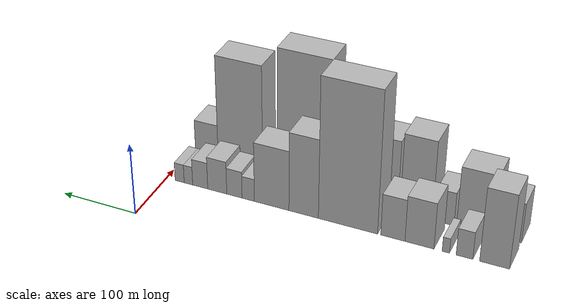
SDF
<sdf version="1.6">
 <world name="default">
  <model name="building_1">
   <static>1</static>
   <pose>100.0000 -426.2330 0 0.000000 0.000000 0.000000</pose>
   <link name="link">
    <pose>0 0 52.50 0 0 0</pose>
    <collision name="collision"><geometry><box><size>40.0000 35.5341 105.0000</size></box></geometry></collision>
    <visual name="visual">
     <cast_shadows>0</cast_shadows>
     <geometry><box><size>40.0000 35.5341 105.0000</size></box></geometry>
     <material>
      <script>
       <uri>model://HANNAS_wall/materials/scripts</uri>
       <uri>model://HANNAS_wall/materials/textures</uri>
       <name>vrc/HANNAS_wall</name>
      </script>
     </material>
    </visual>
   </link>
  </model>
  <model name="building_2">
   <static>1</static>
   <pose>100.0000 -390.4082 0 0.000000 0.000000 0.000000</pose>
   <link name="link">
    <pose>0 0 19.50 0 0 0</pose>
    <collision name="collision"><geometry><box><size>40.0000 20.1155 39.0000</size></box></geometry></collision>
    <visual name="visual">
     <cast_shadows>0</cast_shadows>
     <geometry><box><size>40.0000 20.1155 39.0000</size></box></geometry>
     <material>
      <script>
       <uri>model://HANNAS_wall/materials/scripts</uri>
       <uri>model://HANNAS_wall/materials/textures</uri>
       <name>vrc/HANNAS_wall</name>
      </script>
     </material>
    </visual>
   </link>
  </model>
  <model name="building_3">
   <static>1</static>
   <pose>100.0000 -367.8501 0 0.000000 0.000000 0.000000</pose>
   <link name="link">
    <pose>0 0 10.50 0 0 0</pose>
    <collision name="collision"><geometry><box><size>40.0000 9.0007 21.0000</size></box></geometry></collision>
    <visual name="visual">
     <cast_shadows>0</cast_shadows>
     <geometry><box><size>40.0000 9.0007 21.0000</size></box></geometry>
     <material>
      <script>
       <uri>model://HANNAS_wall/materials/scripts</uri>
       <uri>model://HANNAS_wall/materials/textures</uri>
       <name>vrc/HANNAS_wall</name>
      </script>
     </material>
    </visual>
   </link>
  </model>
  <model name="building_4">
   <static>1</static>
   <pose>100.0000 -335.4870 0 0.000000 0.000000 0.000000</pose>
   <link name="link">
    <pose>0 0 33.00 0 0 0</pose>
    <collision name="collision"><geometry><box><size>40.0000 35.7254 66.0000</size></box></geometry></collision>
    <visual name="visual">
     <cast_shadows>0</cast_shadows>
     <geometry><box><size>40.0000 35.7254 66.0000</size></box></geometry>
     <material>
      <script>
       <uri>model://HANNAS_wall/materials/scripts</uri>
       <uri>model://HANNAS_wall/materials/textures</uri>
       <name>vrc/HANNAS_wall</name>
      </script>
     </material>
    </visual>
   </link>
  </model>
  <model name="building_5">
   <static>1</static>
   <pose>100.0000 -302.4615 0 0.000000 0.000000 0.000000</pose>
   <link name="link">
    <pose>0 0 30.00 0 0 0</pose>
    <collision name="collision"><geometry><box><size>40.0000 30.3257 60.0000</size></box></geometry></collision>
    <visual name="visual">
     <cast_shadows>0</cast_shadows>
     <geometry><box><size>40.0000 30.3257 60.0000</size></box></geometry>
     <material>
      <script>
       <uri>model://HANNAS_wall/materials/scripts</uri>
       <uri>model://HANNAS_wall/materials/textures</uri>
       <name>vrc/HANNAS_wall</name>
      </script>
     </material>
    </visual>
   </link>
  </model>
  <model name="building_6">
   <static>1</static>
   <pose>100.0000 -245.2362 0 0.000000 0.000000 0.000000</pose>
   <link name="link">
    <pose>0 0 100.50 0 0 0</pose>
    <collision name="collision"><geometry><box><size>40.0000 76.1249 201.0000</size></box></geometry></collision>
    <visual name="visual">
     <cast_shadows>0</cast_shadows>
     <geometry><box><size>40.0000 76.1249 201.0000</size></box></geometry>
     <material>
      <script>
       <uri>model://HANNAS_wall/materials/scripts</uri>
       <uri>model://HANNAS_wall/materials/textures</uri>
       <name>vrc/HANNAS_wall</name>
      </script>
     </material>
    </visual>
   </link>
  </model>
  <model name="building_7">
   <static>1</static>
   <pose>100.0000 -187.8042 0 0.000000 0.000000 0.000000</pose>
   <link name="link">
    <pose>0 0 57.00 0 0 0</pose>
    <collision name="collision"><geometry><box><size>40.0000 38.7392 114.0000</size></box></geometry></collision>
    <visual name="visual">
     <cast_shadows>0</cast_shadows>
     <geometry><box><size>40.0000 38.7392 114.0000</size></box></geometry>
     <material>
      <script>
       <uri>model://HANNAS_wall/materials/scripts</uri>
       <uri>model://HANNAS_wall/materials/textures</uri>
       <name>vrc/HANNAS_wall</name>
      </script>
     </material>
    </visual>
   </link>
  </model>
  <model name="building_8">
   <static>1</static>
   <pose>100.0000 -145.2583 0 0.000000 0.000000 0.000000</pose>
   <link name="link">
    <pose>0 0 43.50 0 0 0</pose>
    <collision name="collision"><geometry><box><size>40.0000 46.3527 87.0000</size></box></geometry></collision>
    <visual name="visual">
     <cast_shadows>0</cast_shadows>
     <geometry><box><size>40.0000 46.3527 87.0000</size></box></geometry>
     <material>
      <script>
       <uri>model://HANNAS_wall/materials/scripts</uri>
       <uri>model://HANNAS_wall/materials/textures</uri>
       <name>vrc/HANNAS_wall</name>
      </script>
     </material>
    </visual>
   </link>
  </model>
  <model name="building_9">
   <static>1</static>
   <pose>100.0000 -113.6604 0 0.000000 0.000000 0.000000</pose>
   <link name="link">
    <pose>0 0 16.50 0 0 0</pose>
    <collision name="collision"><geometry><box><size>40.0000 16.8431 33.0000</size></box></geometry></collision>
    <visual name="visual">
     <cast_shadows>0</cast_shadows>
     <geometry><box><size>40.0000 16.8431 33.0000</size></box></geometry>
     <material>
      <script>
       <uri>model://HANNAS_wall/materials/scripts</uri>
       <uri>model://HANNAS_wall/materials/textures</uri>
       <name>vrc/HANNAS_wall</name>
      </script>
     </material>
    </visual>
   </link>
  </model>
  <model name="building_10">
   <static>1</static>
   <pose>100.0000 -94.7720 0 0.000000 0.000000 0.000000</pose>
   <link name="link">
    <pose>0 0 19.50 0 0 0</pose>
    <collision name="collision"><geometry><box><size>40.0000 20.9336 39.0000</size></box></geometry></collision>
    <visual name="visual">
     <cast_shadows>0</cast_shadows>
     <geometry><box><size>40.0000 20.9336 39.0000</size></box></geometry>
     <material>
      <script>
       <uri>model://HANNAS_wall/materials/scripts</uri>
       <uri>model://HANNAS_wall/materials/textures</uri>
       <name>vrc/HANNAS_wall</name>
      </script>
     </material>
    </visual>
   </link>
  </model>
  <model name="building_11">
   <static>1</static>
   <pose>100.0000 -71.0831 0 0.000000 0.000000 0.000000</pose>
   <link name="link">
    <pose>0 0 24.00 0 0 0</pose>
    <collision name="collision"><geometry><box><size>40.0000 26.4442 48.0000</size></box></geometry></collision>
    <visual name="visual">
     <cast_shadows>0</cast_shadows>
     <geometry><box><size>40.0000 26.4442 48.0000</size></box></geometry>
     <material>
      <script>
       <uri>model://HANNAS_wall/materials/scripts</uri>
       <uri>model://HANNAS_wall/materials/textures</uri>
       <name>vrc/HANNAS_wall</name>
      </script>
     </material>
    </visual>
   </link>
  </model>
  <model name="building_12">
   <static>1</static>
   <pose>100.0000 -47.3461 0 0.000000 0.000000 0.000000</pose>
   <link name="link">
    <pose>0 0 19.50 0 0 0</pose>
    <collision name="collision"><geometry><box><size>40.0000 21.0297 39.0000</size></box></geometry></collision>
    <visual name="visual">
     <cast_shadows>0</cast_shadows>
     <geometry><box><size>40.0000 21.0297 39.0000</size></box></geometry>
     <material>
      <script>
       <uri>model://HANNAS_wall/materials/scripts</uri>
       <uri>model://HANNAS_wall/materials/textures</uri>
       <name>vrc/HANNAS_wall</name>
      </script>
     </material>
    </visual>
   </link>
  </model>
  <model name="building_13">
   <static>1</static>
   <pose>100.0000 -30.8680 0 0.000000 0.000000 0.000000</pose>
   <link name="link">
    <pose>0 0 13.50 0 0 0</pose>
    <collision name="collision"><geometry><box><size>40.0000 11.9266 27.0000</size></box></geometry></collision>
    <visual name="visual">
     <cast_shadows>0</cast_shadows>
     <geometry><box><size>40.0000 11.9266 27.0000</size></box></geometry>
     <material>
      <script>
       <uri>model://HANNAS_wall/materials/scripts</uri>
       <uri>model://HANNAS_wall/materials/textures</uri>
       <name>vrc/HANNAS_wall</name>
      </script>
     </material>
    </visual>
   </link>
  </model>
  <model name="building_14">
   <static>1</static>
   <pose>100.0000 -18.4749 0 0.000000 0.000000 0.000000</pose>
   <link name="link">
    <pose>0 0 13.50 0 0 0</pose>
    <collision name="collision"><geometry><box><size>40.0000 12.8596 27.0000</size></box></geometry></collision>
    <visual name="visual">
     <cast_shadows>0</cast_shadows>
     <geometry><box><size>40.0000 12.8596 27.0000</size></box></geometry>
     <material>
      <script>
       <uri>model://HANNAS_wall/materials/scripts</uri>
       <uri>model://HANNAS_wall/materials/textures</uri>
       <name>vrc/HANNAS_wall</name>
      </script>
     </material>
    </visual>
   </link>
  </model>
  <model name="building_27">
   <static>1</static>
   <pose>152.0000 -427.0126 0 0.000000 0.000000 0.000000</pose>
   <link name="link">
    <pose>0 0 28.50 0 0 0</pose>
    <collision name="collision"><geometry><box><size>40.0000 33.9748 57.0000</size></box></geometry></collision>
    <visual name="visual">
     <cast_shadows>0</cast_shadows>
     <geometry><box><size>40.0000 33.9748 57.0000</size></box></geometry>
     <material>
      <script>
       <uri>model://HANNAS_wall/materials/scripts</uri>
       <uri>model://HANNAS_wall/materials/textures</uri>
       <name>vrc/HANNAS_wall</name>
      </script>
     </material>
    </visual>
   </link>
  </model>
  <model name="building_28">
   <static>1</static>
   <pose>152.0000 -387.2508 0 0.000000 0.000000 0.000000</pose>
   <link name="link">
    <pose>0 0 43.50 0 0 0</pose>
    <collision name="collision"><geometry><box><size>40.0000 45.5487 87.0000</size></box></geometry></collision>
    <visual name="visual">
     <cast_shadows>0</cast_shadows>
     <geometry><box><size>40.0000 45.5487 87.0000</size></box></geometry>
     <material>
      <script>
       <uri>model://HANNAS_wall/materials/scripts</uri>
       <uri>model://HANNAS_wall/materials/textures</uri>
       <name>vrc/HANNAS_wall</name>
      </script>
     </material>
    </visual>
   </link>
  </model>
  <model name="building_29">
   <static>1</static>
   <pose>152.0000 -349.2681 0 0.000000 0.000000 0.000000</pose>
   <link name="link">
    <pose>0 0 24.00 0 0 0</pose>
    <collision name="collision"><geometry><box><size>40.0000 24.4169 48.0000</size></box></geometry></collision>
    <visual name="visual">
     <cast_shadows>0</cast_shadows>
     <geometry><box><size>40.0000 24.4169 48.0000</size></box></geometry>
     <material>
      <script>
       <uri>model://HANNAS_wall/materials/scripts</uri>
       <uri>model://HANNAS_wall/materials/textures</uri>
       <name>vrc/HANNAS_wall</name>
      </script>
     </material>
    </visual>
   </link>
  </model>
  <model name="building_30">
   <static>1</static>
   <pose>152.0000 -313.5164 0 0.000000 0.000000 0.000000</pose>
   <link name="link">
    <pose>0 0 57.00 0 0 0</pose>
    <collision name="collision"><geometry><box><size>40.0000 41.0864 114.0000</size></box></geometry></collision>
    <visual name="visual">
     <cast_shadows>0</cast_shadows>
     <geometry><box><size>40.0000 41.0864 114.0000</size></box></geometry>
     <material>
      <script>
       <uri>model://HANNAS_wall/materials/scripts</uri>
       <uri>model://HANNAS_wall/materials/textures</uri>
       <name>vrc/HANNAS_wall</name>
      </script>
     </material>
    </visual>
   </link>
  </model>
  <model name="building_31">
   <static>1</static>
   <pose>152.0000 -273.9052 0 0.000000 0.000000 0.000000</pose>
   <link name="link">
    <pose>0 0 51.00 0 0 0</pose>
    <collision name="collision"><geometry><box><size>40.0000 32.1360 102.0000</size></box></geometry></collision>
    <visual name="visual">
     <cast_shadows>0</cast_shadows>
     <geometry><box><size>40.0000 32.1360 102.0000</size></box></geometry>
     <material>
      <script>
       <uri>model://HANNAS_wall/materials/scripts</uri>
       <uri>model://HANNAS_wall/materials/textures</uri>
       <name>vrc/HANNAS_wall</name>
      </script>
     </material>
    </visual>
   </link>
  </model>
  <model name="building_32">
   <static>1</static>
   <pose>152.0000 -241.0082 0 0.000000 0.000000 0.000000</pose>
   <link name="link">
    <pose>0 0 55.50 0 0 0</pose>
    <collision name="collision"><geometry><box><size>40.0000 33.6579 111.0000</size></box></geometry></collision>
    <visual name="visual">
     <cast_shadows>0</cast_shadows>
     <geometry><box><size>40.0000 33.6579 111.0000</size></box></geometry>
     <material>
      <script>
       <uri>model://HANNAS_wall/materials/scripts</uri>
       <uri>model://HANNAS_wall/materials/textures</uri>
       <name>vrc/HANNAS_wall</name>
      </script>
     </material>
    </visual>
   </link>
  </model>
  <model name="building_33">
   <static>1</static>
   <pose>152.0000 -214.4178 0 0.000000 0.000000 0.000000</pose>
   <link name="link">
    <pose>0 0 18.00 0 0 0</pose>
    <collision name="collision"><geometry><box><size>40.0000 19.5230 36.0000</size></box></geometry></collision>
    <visual name="visual">
     <cast_shadows>0</cast_shadows>
     <geometry><box><size>40.0000 19.5230 36.0000</size></box></geometry>
     <material>
      <script>
       <uri>model://HANNAS_wall/materials/scripts</uri>
       <uri>model://HANNAS_wall/materials/textures</uri>
       <name>vrc/HANNAS_wall</name>
      </script>
     </material>
    </visual>
   </link>
  </model>
  <model name="building_34">
   <static>1</static>
   <pose>152.0000 -165.8614 0 0.000000 0.000000 0.000000</pose>
   <link name="link">
    <pose>0 0 96.00 0 0 0</pose>
    <collision name="collision"><geometry><box><size>40.0000 71.5899 192.0000</size></box></geometry></collision>
    <visual name="visual">
     <cast_shadows>0</cast_shadows>
     <geometry><box><size>40.0000 71.5899 192.0000</size></box></geometry>
     <material>
      <script>
       <uri>model://HANNAS_wall/materials/scripts</uri>
       <uri>model://HANNAS_wall/materials/textures</uri>
       <name>vrc/HANNAS_wall</name>
      </script>
     </material>
    </visual>
   </link>
  </model>
  <model name="building_35">
   <static>1</static>
   <pose>152.0000 -124.8272 0 0.000000 0.000000 0.000000</pose>
   <link name="link">
    <pose>0 0 10.50 0 0 0</pose>
    <collision name="collision"><geometry><box><size>40.0000 10.4786 21.0000</size></box></geometry></collision>
    <visual name="visual">
     <cast_shadows>0</cast_shadows>
     <geometry><box><size>40.0000 10.4786 21.0000</size></box></geometry>
     <material>
      <script>
       <uri>model://HANNAS_wall/materials/scripts</uri>
       <uri>model://HANNAS_wall/materials/textures</uri>
       <name>vrc/HANNAS_wall</name>
      </script>
     </material>
    </visual>
   </link>
  </model>
  <model name="building_36">
   <static>1</static>
   <pose>152.0000 -78.3259 0 0.000000 0.000000 0.000000</pose>
   <link name="link">
    <pose>0 0 81.00 0 0 0</pose>
    <collision name="collision"><geometry><box><size>40.0000 62.5240 162.0000</size></box></geometry></collision>
    <visual name="visual">
     <cast_shadows>0</cast_shadows>
     <geometry><box><size>40.0000 62.5240 162.0000</size></box></geometry>
     <material>
      <script>
       <uri>model://HANNAS_wall/materials/scripts</uri>
       <uri>model://HANNAS_wall/materials/textures</uri>
       <name>vrc/HANNAS_wall</name>
      </script>
     </material>
    </visual>
   </link>
  </model>
  <model name="building_37">
   <static>1</static>
   <pose>152.0000 -30.8883 0 0.000000 0.000000 0.000000</pose>
   <link name="link">
    <pose>0 0 30.00 0 0 0</pose>
    <collision name="collision"><geometry><box><size>40.0000 32.3511 60.0000</size></box></geometry></collision>
    <visual name="visual">
     <cast_shadows>0</cast_shadows>
     <geometry><box><size>40.0000 32.3511 60.0000</size></box></geometry>
     <material>
      <script>
       <uri>model://HANNAS_wall/materials/scripts</uri>
       <uri>model://HANNAS_wall/materials/textures</uri>
       <name>vrc/HANNAS_wall</name>
      </script>
     </material>
    </visual>
   </link>
  </model>
 </world>
</sdf>
